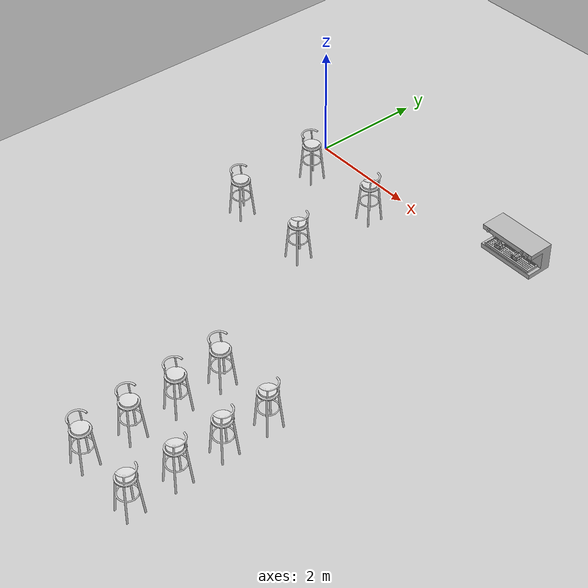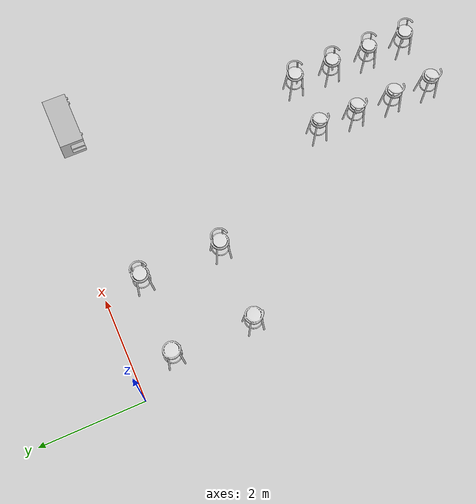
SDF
<sdf version="1.6">
 <world name="default">
  <include><uri>model://ground_plane</uri></include>
  <include><uri>model://sun</uri></include>
  <scene><shadows>false</shadows></scene>
  <physics type="ode">
   <real_time_update_rate>1000.0</real_time_update_rate>
   <max_step_size>0.001</max_step_size>
   <real_time_factor>1</real_time_factor>
   <ode>
    <solver>
     <type>quick</type>
     <iters>150</iters>
     <precon_iters>0</precon_iters>
     <sor>1.400000</sor>
     <use_dynamic_moi_rescaling>1</use_dynamic_moi_rescaling>
    </solver>
    <constraints>
     <cfm>0.00001</cfm>
     <erp>0.2</erp>
     <contact_max_correcting_vel>2000.000000</contact_max_correcting_vel>
     <contact_surface_layer>0.01000</contact_surface_layer>
    </constraints>
   </ode>
  </physics>
  <model name="barstool_9">
   <static>1</static>
   <include><uri>model://barstool</uri></include>
   <pose>0.5 -0.75 0 1.57 0 1.57</pose>
  </model>
  <model name="barstool_10">
   <static>1</static>
   <include><uri>model://barstool</uri></include>
   <pose>0.5 -2.3 0 1.57 0 1.57</pose>
  </model>
  <model name="barstool_11">
   <static>1</static>
   <include><uri>model://barstool</uri></include>
   <pose>2.0 -0.75 0 1.57 0 -1.57</pose>
  </model>
  <model name="barstool_12">
   <static>1</static>
   <include><uri>model://barstool</uri></include>
   <pose>2.0 -2.3 0 1.57 0 -1.57</pose>
  </model>
  <model name="espresso_machine">
   <static>1</static>
   <include><uri>model://espresso_machine</uri></include>
   <pose>5.0 -0.5 0.9 0 0 0</pose>
  </model>
  <model name="barstool">
   <static>1</static>
   <include><uri>model://barstool</uri></include>
   <pose>3.5 -5.0 0 1.57 0 1.57</pose>
  </model>
  <model name="barstool_2">
   <static>1</static>
   <include><uri>model://barstool</uri></include>
   <pose>3.5 -5.8 0 1.57 0 1.57</pose>
  </model>
  <model name="barstool_3">
   <static>1</static>
   <include><uri>model://barstool</uri></include>
   <pose>3.5 -6.6 0 1.57 0 1.57</pose>
  </model>
  <model name="barstool_4">
   <static>1</static>
   <include><uri>model://barstool</uri></include>
   <pose>3.5 -7.4 0 1.57 0 1.57</pose>
  </model>
  <model name="barstool_5">
   <static>1</static>
   <include><uri>model://barstool</uri></include>
   <pose>4.6 -5.0 0 1.57 0 -1.57</pose>
  </model>
  <model name="barstool_6">
   <static>1</static>
   <include><uri>model://barstool</uri></include>
   <pose>4.6 -5.8 0 1.57 0 -1.57</pose>
  </model>
  <model name="barstool_7">
   <static>1</static>
   <include><uri>model://barstool</uri></include>
   <pose>4.6 -6.6 0 1.57 0 -1.57</pose>
  </model>
  <model name="barstool_8">
   <static>1</static>
   <include><uri>model://barstool</uri></include>
   <pose>4.6 -7.4 0 1.57 0 -1.57</pose>
  </model>
  <light name="user_point_light_2" type="point">
   <pose>3.0 -4.5 4.0 0 0 0</pose>
   <diffuse>0.2 0.2 0.2 1</diffuse>
   <specular>0.1 0.1 0.1 1</specular>
   <attenuation>
    <range>10</range>
    <constant>0.5</constant>
    <linear>0.01</linear>
    <quadratic>0.001</quadratic>
   </attenuation>
   <cast_shadows>0</cast_shadows>
   <direction>0 0 -1</direction>
  </light>
 </world>
</sdf>

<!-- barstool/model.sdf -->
<sdf version="1.5">
  <model name="barstool">
    <static>true</static>
    <pose>0 0 0 0 0 0</pose>
    <link name="body">
      <inertial>
        <mass>5</mass>
        <inertia>
          <ixx>1.0</ixx>
          <ixy>0.0</ixy>
          <iyy>1.0</iyy>
          <ixz>0.0</ixz>
          <iyz>0.0</iyz>
          <izz>1.0</izz>
        </inertia>
        <pose>0 0 0 0 0 0</pose>
      </inertial>
      <visual name="visual">
        <geometry>
          <mesh>
            <uri>model://barstool/meshes/barstool.dae</uri>
            <scale>0.01 0.01 0.01</scale>
          </mesh>
        </geometry>
      </visual>
    </link>
  </model>
</sdf>

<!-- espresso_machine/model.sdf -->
<sdf version="1.5">
  <model name="espresso_machine">
    <static>true</static>
    <pose>0 0 0 0 0 0</pose>
    <link name="body">
      <inertial>
        <mass>5</mass>
        <inertia>
          <ixx>1.0</ixx>
          <ixy>0.0</ixy>
          <iyy>1.0</iyy>
          <ixz>0.0</ixz>
          <iyz>0.0</iyz>
          <izz>1.0</izz>
        </inertia>
        <pose>0 0 0 0 0 0</pose>
      </inertial>
      <collision name="collision">
        <geometry>
          <mesh>
            <uri>model://espresso_machine/meshes/espresso_machine.dae</uri>
            <scale>0.5 0.5 0.5</scale>
          </mesh>
        </geometry>
      </collision>
      <visual name="visual">
        <geometry>
          <mesh>
            <uri>model://espresso_machine/meshes/espresso_machine.dae</uri>
            <scale>0.5 0.5 0.5</scale>
          </mesh>
        </geometry>
      </visual>
    </link>
  </model>
</sdf>
